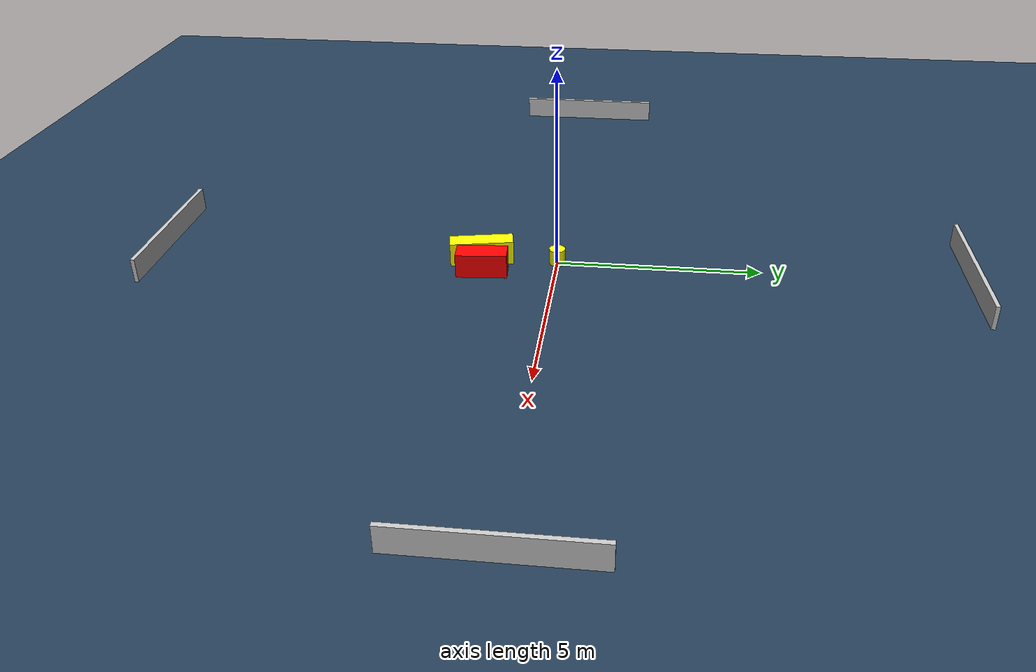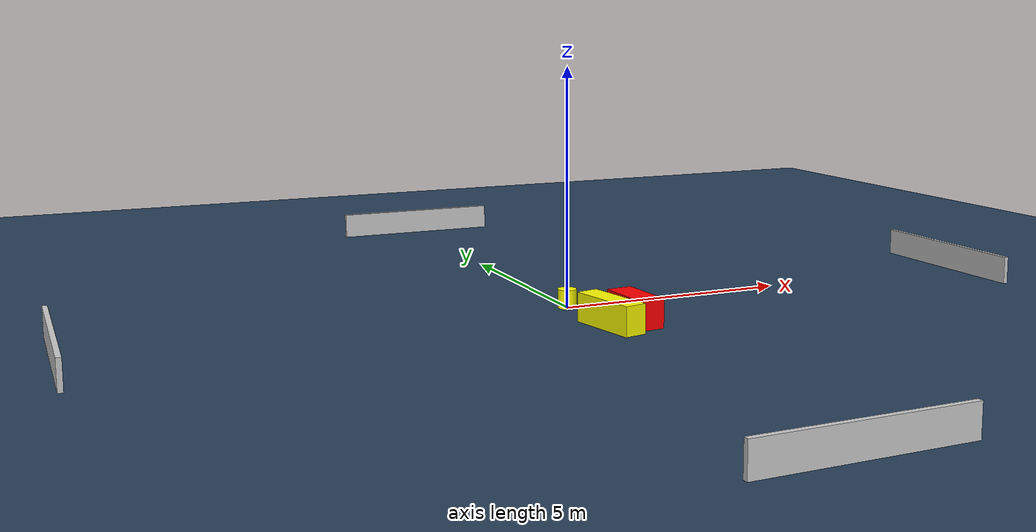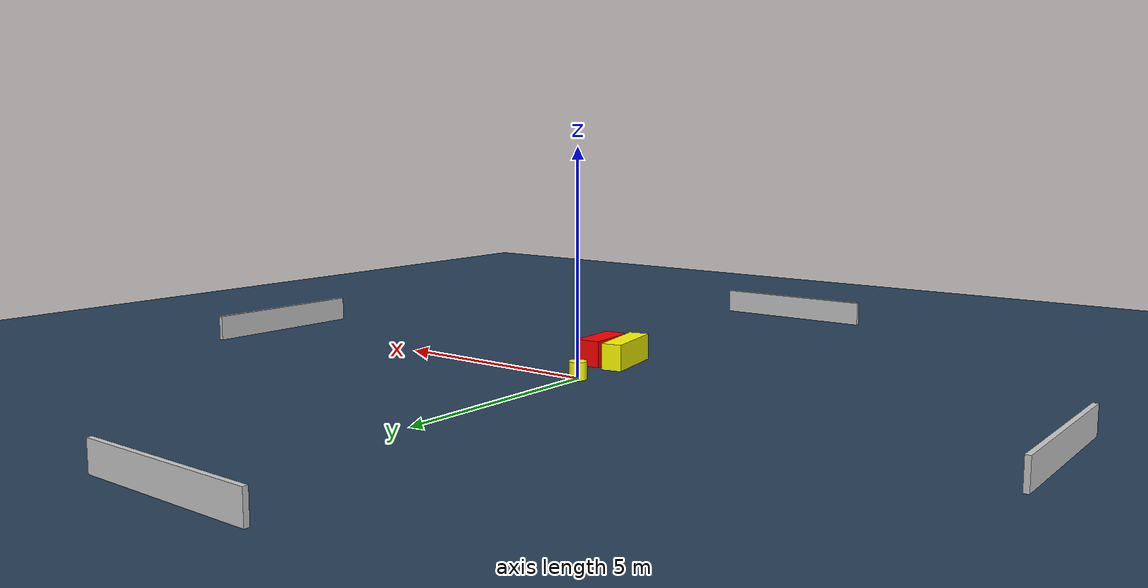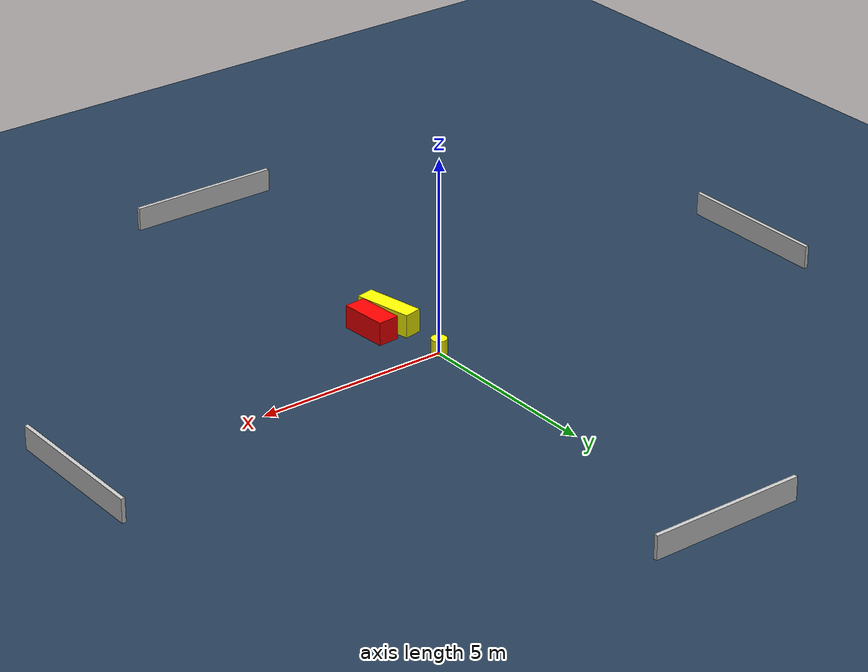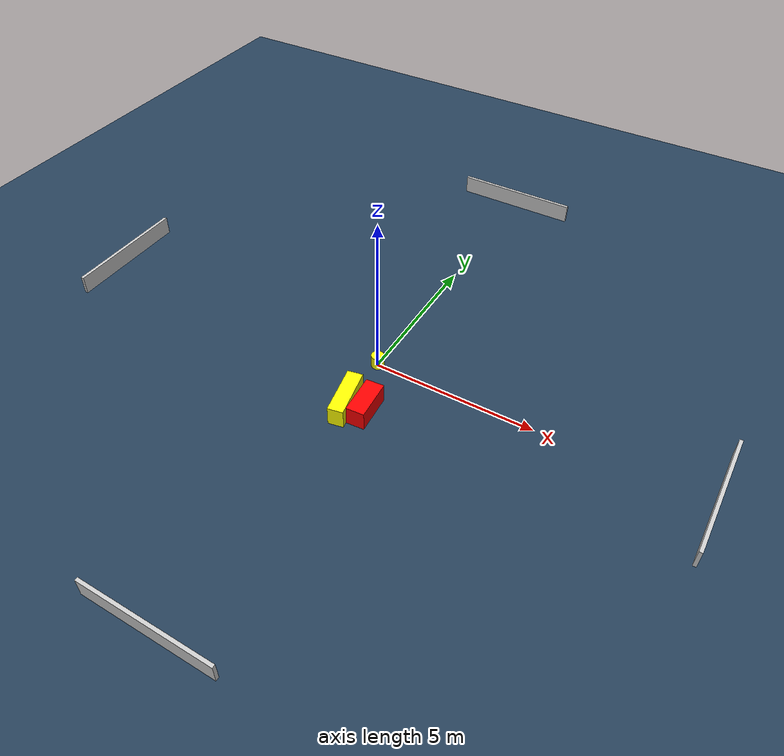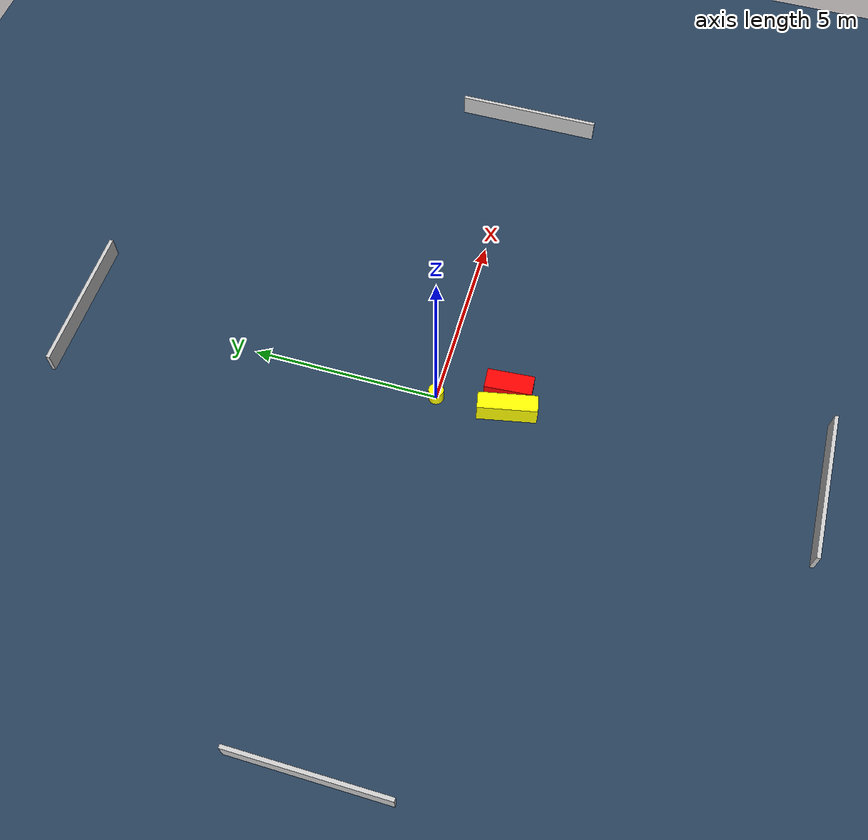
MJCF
<?xml version="1.0" ?>
<mujoco model="generated_environment">
  <option timestep="0.01" integrator="RK4" cone="elliptic"/>
  <default>
    <geom density="1"/>
  </default>
  <asset>
    <texture builtin="gradient" height="3072" name="skybox" rgb1="0.3 0.5 0.7" rgb2="0 0 0" type="skybox" width="512"/>
    <texture builtin="checker" height="300" name="groundplane" rgb1="0.2 0.3 0.4" rgb2="0.1 0.2 0.3" type="2d" width="300"/>
    <material name="groundplane" reflectance="0.2" texrepeat="5 5" texture="groundplane"/>
  </asset>
  <worldbody>
    <light dir="0 0 -1" directional="true" pos="0 0 1.5"/>
    <geom condim="3" friction="0.5 0.005 0.001" material="groundplane" name="floor" pos="0 0 0" size="0 0 0.05" type="plane"/>
    <body name="walls">
      <geom name="wall_1" condim="4" pos="-10.0 0.0 0.3" rgba="0.800000011920929 0.800000011920929 0.800000011920929 1.0" size="0.05 2.0 0.3" type="box"/>
      <geom name="wall_2" condim="4" pos="10.0 0.0 0.3" rgba="0.800000011920929 0.800000011920929 0.800000011920929 1.0" size="0.05 2.0 0.3" type="box"/>
      <geom name="wall_3" condim="4" pos="0.0 -10.0 0.3" rgba="0.800000011920929 0.800000011920929 0.800000011920929 1.0" size="2.0 0.05 0.3" type="box"/>
      <geom name="wall_4" condim="4" pos="0.0 10.0 0.3" rgba="0.800000011920929 0.800000011920929 0.800000011920929 1.0" size="2.0 0.05 0.3" type="box"/>
    </body>
    <body name="robot">
      <joint name="joint_x" type="slide" pos="0 0 0" axis="1 0 0"/>
      <joint name="joint_y" type="slide" pos="0 0 0" axis="0 1 0"/>
      <geom name="robot" type="cylinder" pos="0.0 0.0 0.2" size="0.2 0.2 0.0" mass="5.0" friction="1.0 0.005 0.0001" condim="4" rgba="1.0 1.0 0.0 1.0"/>
    </body>
    <body name="obstacle_1_movable">
      <geom name="obstacle_1_movable" condim="4" pos="0.0724120577151653 -1.8858716496790824 0.3" euler="0 0 191.16966037227314" friction="0.0 0.005 0.001" rgba="1.0 1.0 0.0 1.0" size="0.23464378338607583 0.7826933943364653 0.3" type="box" mass="0.1"/>
      <joint type="free"/>
    </body>
    <body name="obstacle_2_static">
      <geom name="obstacle_2_static" condim="4" pos="0.6582386456612541 -1.7832697709726226 0.3" euler="0 0 94.18497652715993" friction="0.0 0.005 0.001" rgba="1.0 0.0 0.0 1.0" size="0.6232133022995936 0.27658420476715323 0.3" type="box"/>
    </body>
  </worldbody>
  <actuator>
    <motor name="actuator_x" joint="joint_x" gear="1" ctrlrange="-1 1"/>
    <motor name="actuator_y" joint="joint_y" gear="1" ctrlrange="-1 1"/>
  </actuator>
</mujoco>
